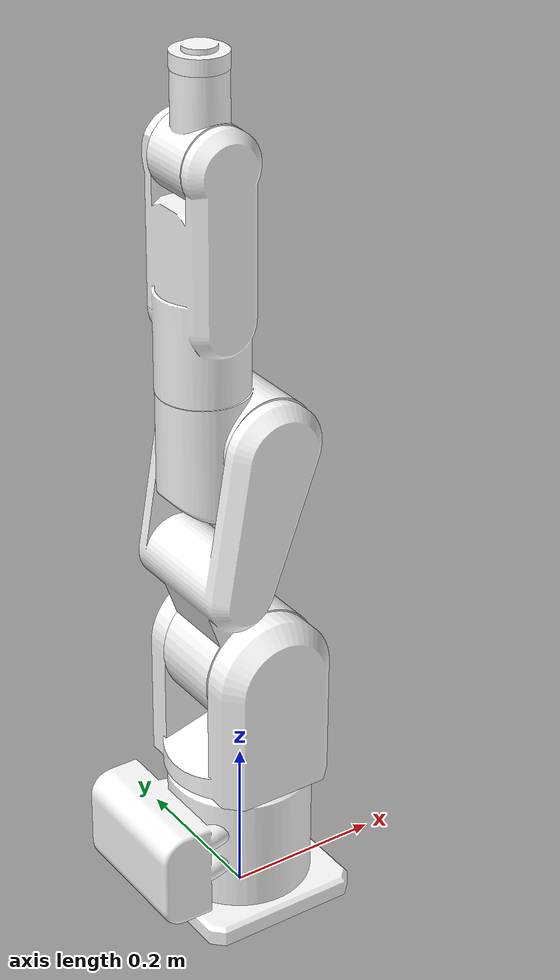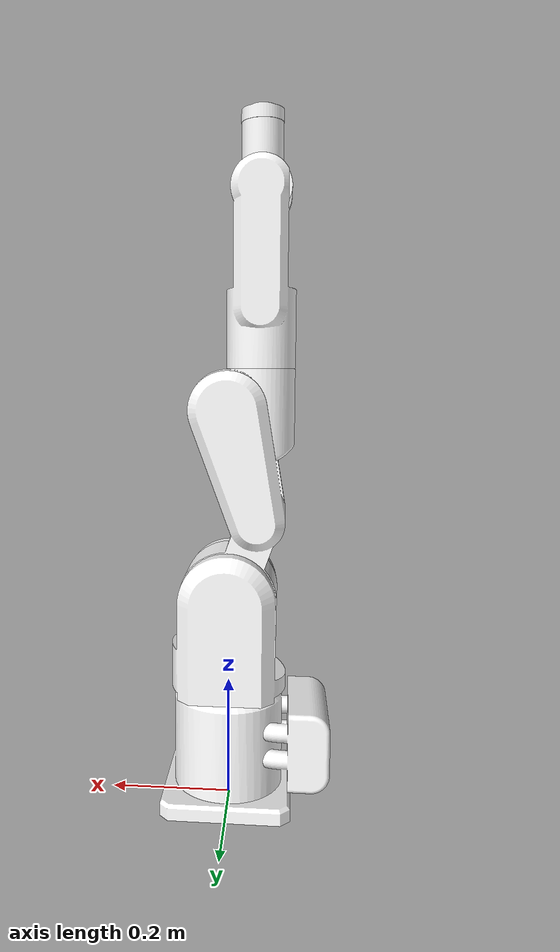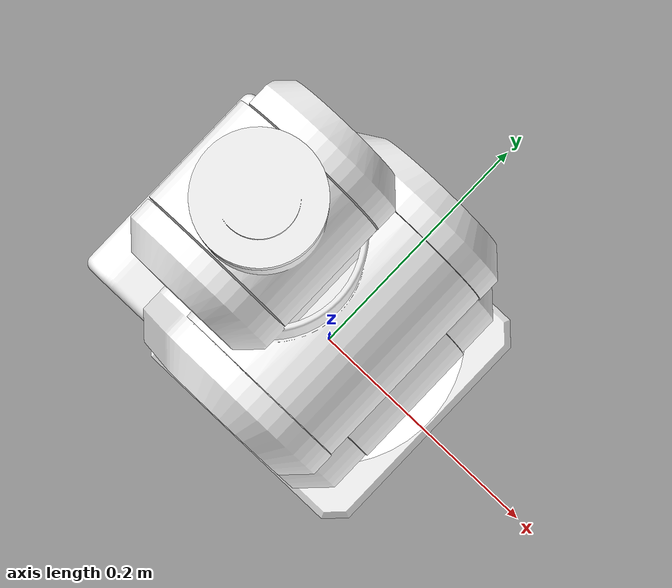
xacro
<?xml version="1.0"?>
<!-- Copyright (C) 2018, Tokyo Opensource Robotics Kyokai Association -->
<robot name="rv4fl" xmlns:xacro="http://www.ros.org/wiki/xacro">
  <material name="white">
    <color rgba="1.0 1.0 1.0 1.0"/>
  </material>

  <xacro:include filename="$(find melfa_description)/urdf/rv4fl.xacro"/>

  <link name="base_link"/>

  <xacro:rv4fl parent="base_link">
    <origin xyz="0 0 0" rpy="0 0 0"/>
  </xacro:rv4fl>

</robot>

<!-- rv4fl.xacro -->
<!-- Copyright (C) 2018, Tokyo Opensource Robotics Kyokai Association -->
<robot xmlns:xacro="http://www.ros.org/wiki/xacro">

  <xacro:macro name="rv4fl" params="parent *origin">
    <joint name="rv4fl_mounting_joint" type="fixed">
      <xacro:insert_block name="origin"/>
      <parent link="${parent}"/>
      <child link="link0"/>
    </joint>

    <link name="link0">
      <visual>
	<origin rpy="0 0 ${pi}" xyz="0 0 0"/>
	<geometry>
	  <mesh filename="package://melfa_description/mesh/rv4fl/L0.stl"/>
	</geometry>
	<material name="white"/>
      </visual>
      <collision>
	<origin rpy="0 0 ${pi}" xyz="0 0 0"/>
	<geometry>
	  <mesh filename="package://melfa_description/mesh/rv4fl/L0.stl"/>
	</geometry>
      </collision>
    </link>

    <joint name="joint1" type="revolute">
      <parent link="link0"/>
      <child link="link1"/>
      <origin xyz="0 0 0.350" rpy="0 0 0"/>
      <axis xyz="0 0 1"/>
      <dynamics damping="0.7"/>
      <limit upper="${240*pi/180}" lower="${-240*pi/180}" effort="224.64" velocity="7.330"/>
    </joint>

    <link name="link1">
      <visual>
	<origin rpy="0 0 0" xyz="0 0 -0.350"/>
	<geometry>
	  <mesh filename="package://melfa_description/mesh/rv4fl/L1.stl"/>
	</geometry>
	<material name="white"/>
      </visual>
      <collision>
	<origin rpy="0 0 0" xyz="0 0 -0.350"/>
	<geometry>
	  <mesh filename="package://melfa_description/mesh/rv4fl/L1.stl"/>
	</geometry>
      </collision>
    </link>

    <joint name="joint2" type="revolute">
      <parent link="link1"/>
      <child link="link2"/>
      <origin xyz="0 0 0" rpy="0 0 0"/>
      <axis xyz="0 1 0"/>
      <dynamics damping="0.7"/>
      <limit upper="${130*pi/180}" lower="${-110*pi/180}" effort="263.25" velocity="${321*pi/180}" />
    </joint>

    <link name="link2">
      <visual>
	<origin rpy="0 0 ${pi}" xyz="0 0 -0.350"/>
	<geometry>
	  <mesh filename="package://melfa_description/mesh/rv4fl/L2.stl"/>
	</geometry>
	<material name="white"/>
      </visual>
      <collision>
	<origin rpy="0 0 ${pi}" xyz="0 0 -0.350"/>
	<geometry>
	  <mesh filename="package://melfa_description/mesh/rv4fl/L2.stl"/>
	</geometry>
      </collision>
    </link>

    <joint name="joint3" type="revolute">
      <parent link="link2"/>
      <child link="link3"/>
      <origin xyz="0 0 0.310" rpy="0 0 0"/>
      <axis xyz="0 1 0"/>
      <dynamics damping="0.7"/>
      <limit upper="${162*pi/180}" lower="0.00" effort="145.15" velocity="${360*pi/180}" />
    </joint>

    <link name="link3">
      <visual>
	<origin rpy="0 0 ${pi}" xyz="0 0 ${-0.350-0.310}"/>
	<geometry>
	  <mesh filename="package://melfa_description/mesh/rv4fl/L3.stl"/>
	</geometry>
	<material name="white"/>
      </visual>
      <collision>
	<origin rpy="0 0 ${pi}" xyz="0 0 ${-0.350-0.310}"/>
	<geometry>
	  <mesh filename="package://melfa_description/mesh/rv4fl/L3.stl"/>
	</geometry>
      </collision>
    </link>

    <joint name="joint4" type="revolute">
      <parent link="link3"/>
      <child link="link4"/>
      <origin xyz="-0.050 0 0.335" rpy="0 0 0"/>
      <axis xyz="0 0 1"/>
      <dynamics damping="0.7"/>
      <limit upper="${200*pi/180}" lower="${-200*pi/180}" effort="10" velocity="${337*pi/180}" />
    </joint>

    <link name="link4">
      <visual>
	<origin rpy="0 0 0" xyz="-0.050 0 ${-0.350-0.310-0.335}"/>
	<geometry>
	  <mesh filename="package://melfa_description/mesh/rv4fl/L4.stl"/>
	</geometry>
	<material name="white"/>
      </visual>
      <collision>
	<origin rpy="0 0 0" xyz="-0.050 0 ${-0.350-0.310-0.335}"/>
	<geometry>
	  <mesh filename="package://melfa_description/mesh/rv4fl/L4.stl"/>
	</geometry>
      </collision>
    </link>

    <joint name="joint5" type="revolute">
      <parent link="link4"/>
      <child link="link5"/>
      <origin xyz="0 0 0" rpy="0 0 0"/>
      <axis xyz="0 1 0"/>
      <dynamics damping="0.7"/>
      <limit upper="${120*pi/180}" lower="${-120*pi/180}" effort="10" velocity="${450*pi/180}" />
    </joint>

    <link name="link5">
      <visual>
	<origin rpy="0 0 0" xyz="-0.050 0 ${-0.350-0.310-0.335}"/>
	<geometry>
	  <mesh filename="package://melfa_description/mesh/rv4fl/L5.stl"/>
	</geometry>
	<material name="white"/>
      </visual>
      <collision>
	<origin rpy="0 0 0" xyz="-0.050 0 ${-0.350-0.310-0.335}"/>
	<geometry>
	  <mesh filename="package://melfa_description/mesh/rv4fl/L5.stl"/>
	</geometry>
      </collision>
    </link>

    <joint name="joint6" type="revolute">
      <parent link="link5"/>
      <child link="link6"/>
      <origin xyz="0 0 0.125" rpy="0 0 0"/>
      <axis xyz="0 0 1"/>
      <dynamics damping="0.7"/>
      <limit upper="${360*pi/180}" lower="${-360*pi/180}" effort="10" velocity="${720*pi/180}" />
    </joint>

    <link name="link6">
      <visual>
	<origin rpy="0 0 0" xyz="-0.050 0 ${-0.350-0.310-0.335-0.125}"/>
	<geometry>
	  <mesh filename="package://melfa_description/mesh/rv4fl/L6.stl"/>
	</geometry>
	<material name="white"/>
      </visual>
      <collision>
	<origin rpy="0 0 0" xyz="-0.050 0 ${-0.350-0.310-0.335-0.125}"/>
	<geometry>
	  <mesh filename="package://melfa_description/mesh/rv4fl/L6.stl"/>
	</geometry>
      </collision>
    </link>
  </xacro:macro>
</robot>
